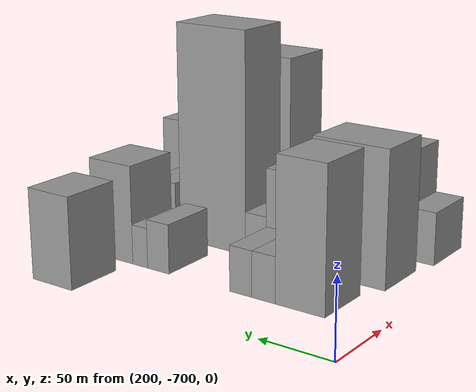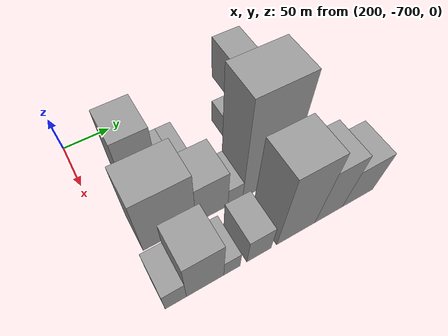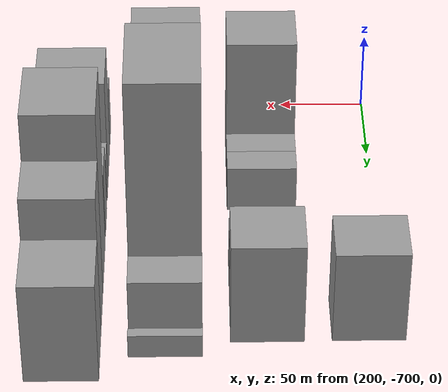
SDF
<sdf version="1.6">
 <world name="default">
  <model name="building_114">
   <static>1</static>
   <pose>210.0000 -501.2615 0 0.000000 0.000000 0.000000</pose>
   <link name="link">
    <pose>0 0 30.00 0 0 0</pose>
    <collision name="collision"><geometry><box><size>40.0000 33.2396 60.0000</size></box></geometry></collision>
    <visual name="visual">
     <cast_shadows>0</cast_shadows>
     <geometry><box><size>40.0000 33.2396 60.0000</size></box></geometry>
     <material>
      <script>
       <uri>model://grey_wall/materials/scripts</uri>
       <uri>model://grey_wall/materials/textures</uri>
       <name>vrc/grey_wall</name>
      </script>
     </material>
    </visual>
   </link>
  </model>
  <model name="building_164">
   <static>1</static>
   <pose>265.0000 -648.0831 0 0.000000 0.000000 0.000000</pose>
   <link name="link">
    <pose>0 0 46.50 0 0 0</pose>
    <collision name="collision"><geometry><box><size>40.0000 34.7114 93.0000</size></box></geometry></collision>
    <visual name="visual">
     <cast_shadows>0</cast_shadows>
     <geometry><box><size>40.0000 34.7114 93.0000</size></box></geometry>
     <material>
      <script>
       <uri>model://grey_wall/materials/scripts</uri>
       <uri>model://grey_wall/materials/textures</uri>
       <name>vrc/grey_wall</name>
      </script>
     </material>
    </visual>
   </link>
  </model>
  <model name="building_165">
   <static>1</static>
   <pose>265.0000 -622.2636 0 0.000000 0.000000 0.000000</pose>
   <link name="link">
    <pose>0 0 15.00 0 0 0</pose>
    <collision name="collision"><geometry><box><size>40.0000 16.9275 30.0000</size></box></geometry></collision>
    <visual name="visual">
     <cast_shadows>0</cast_shadows>
     <geometry><box><size>40.0000 16.9275 30.0000</size></box></geometry>
     <material>
      <script>
       <uri>model://grey_wall/materials/scripts</uri>
       <uri>model://grey_wall/materials/textures</uri>
       <name>vrc/grey_wall</name>
      </script>
     </material>
    </visual>
   </link>
  </model>
  <model name="building_166">
   <static>1</static>
   <pose>265.0000 -605.4280 0 0.000000 0.000000 0.000000</pose>
   <link name="link">
    <pose>0 0 15.00 0 0 0</pose>
    <collision name="collision"><geometry><box><size>40.0000 16.7436 30.0000</size></box></geometry></collision>
    <visual name="visual">
     <cast_shadows>0</cast_shadows>
     <geometry><box><size>40.0000 16.7436 30.0000</size></box></geometry>
     <material>
      <script>
       <uri>model://grey_wall/materials/scripts</uri>
       <uri>model://grey_wall/materials/textures</uri>
       <name>vrc/grey_wall</name>
      </script>
     </material>
    </visual>
   </link>
  </model>
  <model name="building_167">
   <static>1</static>
   <pose>265.0000 -540.4863 0 0.000000 0.000000 0.000000</pose>
   <link name="link">
    <pose>0 0 16.50 0 0 0</pose>
    <collision name="collision"><geometry><box><size>40.0000 17.7133 33.0000</size></box></geometry></collision>
    <visual name="visual">
     <cast_shadows>0</cast_shadows>
     <geometry><box><size>40.0000 17.7133 33.0000</size></box></geometry>
     <material>
      <script>
       <uri>model://grey_wall/materials/scripts</uri>
       <uri>model://grey_wall/materials/textures</uri>
       <name>vrc/grey_wall</name>
      </script>
     </material>
    </visual>
   </link>
  </model>
  <model name="building_168">
   <static>1</static>
   <pose>265.0000 -525.3100 0 0.000000 0.000000 0.000000</pose>
   <link name="link">
    <pose>0 0 13.50 0 0 0</pose>
    <collision name="collision"><geometry><box><size>40.0000 12.6393 27.0000</size></box></geometry></collision>
    <visual name="visual">
     <cast_shadows>0</cast_shadows>
     <geometry><box><size>40.0000 12.6393 27.0000</size></box></geometry>
     <material>
      <script>
       <uri>model://grey_wall/materials/scripts</uri>
       <uri>model://grey_wall/materials/textures</uri>
       <name>vrc/grey_wall</name>
      </script>
     </material>
    </visual>
   </link>
  </model>
  <model name="building_169">
   <static>1</static>
   <pose>265.0000 -501.5116 0 0.000000 0.000000 0.000000</pose>
   <link name="link">
    <pose>0 0 33.00 0 0 0</pose>
    <collision name="collision"><geometry><box><size>40.0000 34.9575 66.0000</size></box></geometry></collision>
    <visual name="visual">
     <cast_shadows>0</cast_shadows>
     <geometry><box><size>40.0000 34.9575 66.0000</size></box></geometry>
     <material>
      <script>
       <uri>model://grey_wall/materials/scripts</uri>
       <uri>model://grey_wall/materials/textures</uri>
       <name>vrc/grey_wall</name>
      </script>
     </material>
    </visual>
   </link>
  </model>
  <model name="building_215">
   <static>1</static>
   <pose>320.0000 -647.4653 0 0.000000 0.000000 0.000000</pose>
   <link name="link">
    <pose>0 0 45.00 0 0 0</pose>
    <collision name="collision"><geometry><box><size>40.0000 53.8564 90.0000</size></box></geometry></collision>
    <visual name="visual">
     <cast_shadows>0</cast_shadows>
     <geometry><box><size>40.0000 53.8564 90.0000</size></box></geometry>
     <material>
      <script>
       <uri>model://grey_wall/materials/scripts</uri>
       <uri>model://grey_wall/materials/textures</uri>
       <name>vrc/grey_wall</name>
      </script>
     </material>
    </visual>
   </link>
  </model>
  <model name="building_216">
   <static>1</static>
   <pose>320.0000 -603.1936 0 0.000000 0.000000 0.000000</pose>
   <link name="link">
    <pose>0 0 31.50 0 0 0</pose>
    <collision name="collision"><geometry><box><size>40.0000 34.6871 63.0000</size></box></geometry></collision>
    <visual name="visual">
     <cast_shadows>0</cast_shadows>
     <geometry><box><size>40.0000 34.6871 63.0000</size></box></geometry>
     <material>
      <script>
       <uri>model://grey_wall/materials/scripts</uri>
       <uri>model://grey_wall/materials/textures</uri>
       <name>vrc/grey_wall</name>
      </script>
     </material>
    </visual>
   </link>
  </model>
  <model name="building_217">
   <static>1</static>
   <pose>320.0000 -577.5794 0 0.000000 0.000000 0.000000</pose>
   <link name="link">
    <pose>0 0 15.00 0 0 0</pose>
    <collision name="collision"><geometry><box><size>40.0000 16.5413 30.0000</size></box></geometry></collision>
    <visual name="visual">
     <cast_shadows>0</cast_shadows>
     <geometry><box><size>40.0000 16.5413 30.0000</size></box></geometry>
     <material>
      <script>
       <uri>model://grey_wall/materials/scripts</uri>
       <uri>model://grey_wall/materials/textures</uri>
       <name>vrc/grey_wall</name>
      </script>
     </material>
    </visual>
   </link>
  </model>
  <model name="building_218">
   <static>1</static>
   <pose>320.0000 -541.8218 0 0.000000 0.000000 0.000000</pose>
   <link name="link">
    <pose>0 0 75.00 0 0 0</pose>
    <collision name="collision"><geometry><box><size>40.0000 54.9738 150.0000</size></box></geometry></collision>
    <visual name="visual">
     <cast_shadows>0</cast_shadows>
     <geometry><box><size>40.0000 54.9738 150.0000</size></box></geometry>
     <material>
      <script>
       <uri>model://grey_wall/materials/scripts</uri>
       <uri>model://grey_wall/materials/textures</uri>
       <name>vrc/grey_wall</name>
      </script>
     </material>
    </visual>
   </link>
  </model>
  <model name="building_219">
   <static>1</static>
   <pose>320.0000 -499.2632 0 0.000000 0.000000 0.000000</pose>
   <link name="link">
    <pose>0 0 19.50 0 0 0</pose>
    <collision name="collision"><geometry><box><size>40.0000 22.1435 39.0000</size></box></geometry></collision>
    <visual name="visual">
     <cast_shadows>0</cast_shadows>
     <geometry><box><size>40.0000 22.1435 39.0000</size></box></geometry>
     <material>
      <script>
       <uri>model://grey_wall/materials/scripts</uri>
       <uri>model://grey_wall/materials/textures</uri>
       <name>vrc/grey_wall</name>
      </script>
     </material>
    </visual>
   </link>
  </model>
  <model name="building_220">
   <static>1</static>
   <pose>320.0000 -476.0483 0 0.000000 0.000000 0.000000</pose>
   <link name="link">
    <pose>0 0 7.50 0 0 0</pose>
    <collision name="collision"><geometry><box><size>40.0000 6.2862 15.0000</size></box></geometry></collision>
    <visual name="visual">
     <cast_shadows>0</cast_shadows>
     <geometry><box><size>40.0000 6.2862 15.0000</size></box></geometry>
     <material>
      <script>
       <uri>model://grey_wall/materials/scripts</uri>
       <uri>model://grey_wall/materials/textures</uri>
       <name>vrc/grey_wall</name>
      </script>
     </material>
    </visual>
   </link>
  </model>
  <model name="building_269">
   <static>1</static>
   <pose>375.0000 -669.5745 0 0.000000 0.000000 0.000000</pose>
   <link name="link">
    <pose>0 0 18.00 0 0 0</pose>
    <collision name="collision"><geometry><box><size>40.0000 20.1530 36.0000</size></box></geometry></collision>
    <visual name="visual">
     <cast_shadows>0</cast_shadows>
     <geometry><box><size>40.0000 20.1530 36.0000</size></box></geometry>
     <material>
      <script>
       <uri>model://grey_wall/materials/scripts</uri>
       <uri>model://grey_wall/materials/textures</uri>
       <name>vrc/grey_wall</name>
      </script>
     </material>
    </visual>
   </link>
  </model>
  <model name="building_270">
   <static>1</static>
   <pose>375.0000 -641.1988 0 0.000000 0.000000 0.000000</pose>
   <link name="link">
    <pose>0 0 36.00 0 0 0</pose>
    <collision name="collision"><geometry><box><size>40.0000 36.5986 72.0000</size></box></geometry></collision>
    <visual name="visual">
     <cast_shadows>0</cast_shadows>
     <geometry><box><size>40.0000 36.5986 72.0000</size></box></geometry>
     <material>
      <script>
       <uri>model://grey_wall/materials/scripts</uri>
       <uri>model://grey_wall/materials/textures</uri>
       <name>vrc/grey_wall</name>
      </script>
     </material>
    </visual>
   </link>
  </model>
  <model name="building_271">
   <static>1</static>
   <pose>375.0000 -614.5682 0 0.000000 0.000000 0.000000</pose>
   <link name="link">
    <pose>0 0 15.00 0 0 0</pose>
    <collision name="collision"><geometry><box><size>40.0000 16.6627 30.0000</size></box></geometry></collision>
    <visual name="visual">
     <cast_shadows>0</cast_shadows>
     <geometry><box><size>40.0000 16.6627 30.0000</size></box></geometry>
     <material>
      <script>
       <uri>model://grey_wall/materials/scripts</uri>
       <uri>model://grey_wall/materials/textures</uri>
       <name>vrc/grey_wall</name>
      </script>
     </material>
    </visual>
   </link>
  </model>
  <model name="building_272">
   <static>1</static>
   <pose>375.0000 -586.3745 0 0.000000 0.000000 0.000000</pose>
   <link name="link">
    <pose>0 0 22.50 0 0 0</pose>
    <collision name="collision"><geometry><box><size>40.0000 25.7247 45.0000</size></box></geometry></collision>
    <visual name="visual">
     <cast_shadows>0</cast_shadows>
     <geometry><box><size>40.0000 25.7247 45.0000</size></box></geometry>
     <material>
      <script>
       <uri>model://grey_wall/materials/scripts</uri>
       <uri>model://grey_wall/materials/textures</uri>
       <name>vrc/grey_wall</name>
      </script>
     </material>
    </visual>
   </link>
  </model>
  <model name="building_273">
   <static>1</static>
   <pose>375.0000 -546.0679 0 0.000000 0.000000 0.000000</pose>
   <link name="link">
    <pose>0 0 61.50 0 0 0</pose>
    <collision name="collision"><geometry><box><size>40.0000 42.8885 123.0000</size></box></geometry></collision>
    <visual name="visual">
     <cast_shadows>0</cast_shadows>
     <geometry><box><size>40.0000 42.8885 123.0000</size></box></geometry>
     <material>
      <script>
       <uri>model://grey_wall/materials/scripts</uri>
       <uri>model://grey_wall/materials/textures</uri>
       <name>vrc/grey_wall</name>
      </script>
     </material>
    </visual>
   </link>
  </model>
  <model name="building_274">
   <static>1</static>
   <pose>375.0000 -508.4785 0 0.000000 0.000000 0.000000</pose>
   <link name="link">
    <pose>0 0 46.50 0 0 0</pose>
    <collision name="collision"><geometry><box><size>40.0000 32.2903 93.0000</size></box></geometry></collision>
    <visual name="visual">
     <cast_shadows>0</cast_shadows>
     <geometry><box><size>40.0000 32.2903 93.0000</size></box></geometry>
     <material>
      <script>
       <uri>model://grey_wall/materials/scripts</uri>
       <uri>model://grey_wall/materials/textures</uri>
       <name>vrc/grey_wall</name>
      </script>
     </material>
    </visual>
   </link>
  </model>
  <model name="building_275">
   <static>1</static>
   <pose>375.0000 -473.5237 0 0.000000 0.000000 0.000000</pose>
   <link name="link">
    <pose>0 0 33.00 0 0 0</pose>
    <collision name="collision"><geometry><box><size>40.0000 37.6191 66.0000</size></box></geometry></collision>
    <visual name="visual">
     <cast_shadows>0</cast_shadows>
     <geometry><box><size>40.0000 37.6191 66.0000</size></box></geometry>
     <material>
      <script>
       <uri>model://grey_wall/materials/scripts</uri>
       <uri>model://grey_wall/materials/textures</uri>
       <name>vrc/grey_wall</name>
      </script>
     </material>
    </visual>
   </link>
  </model>
 </world>
</sdf>
